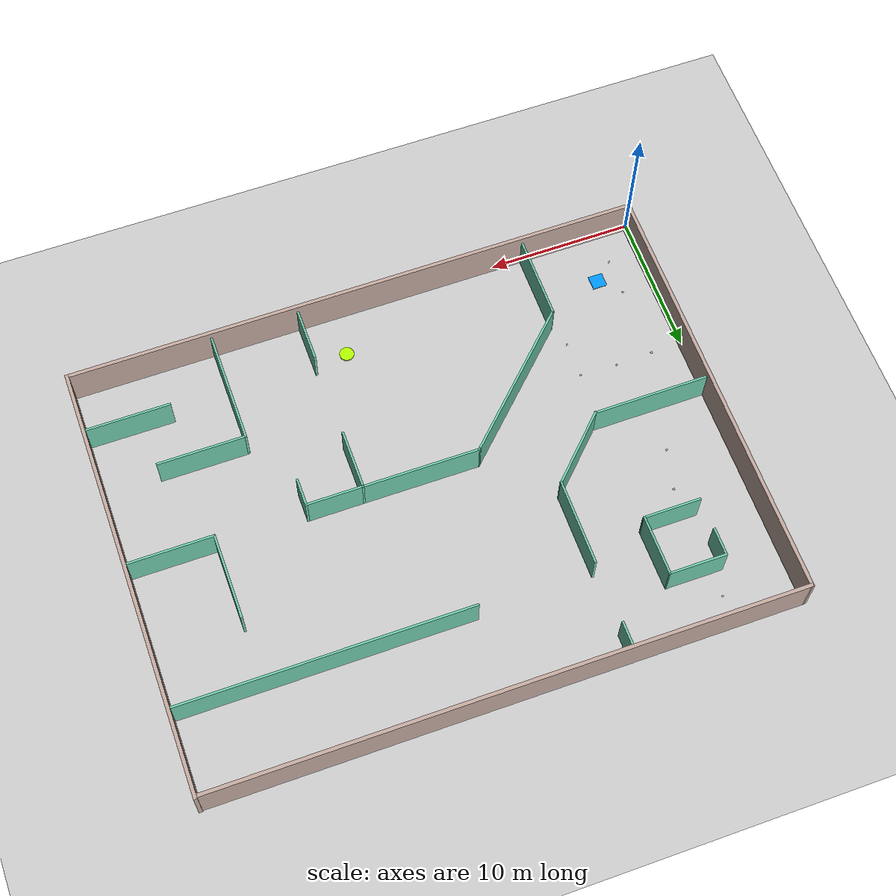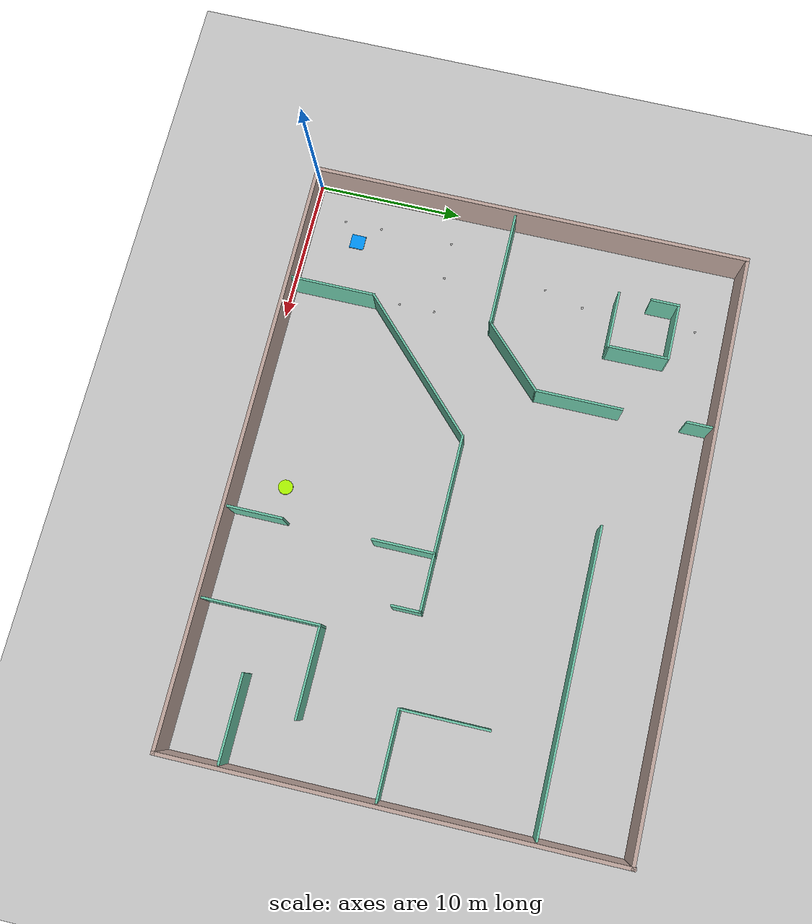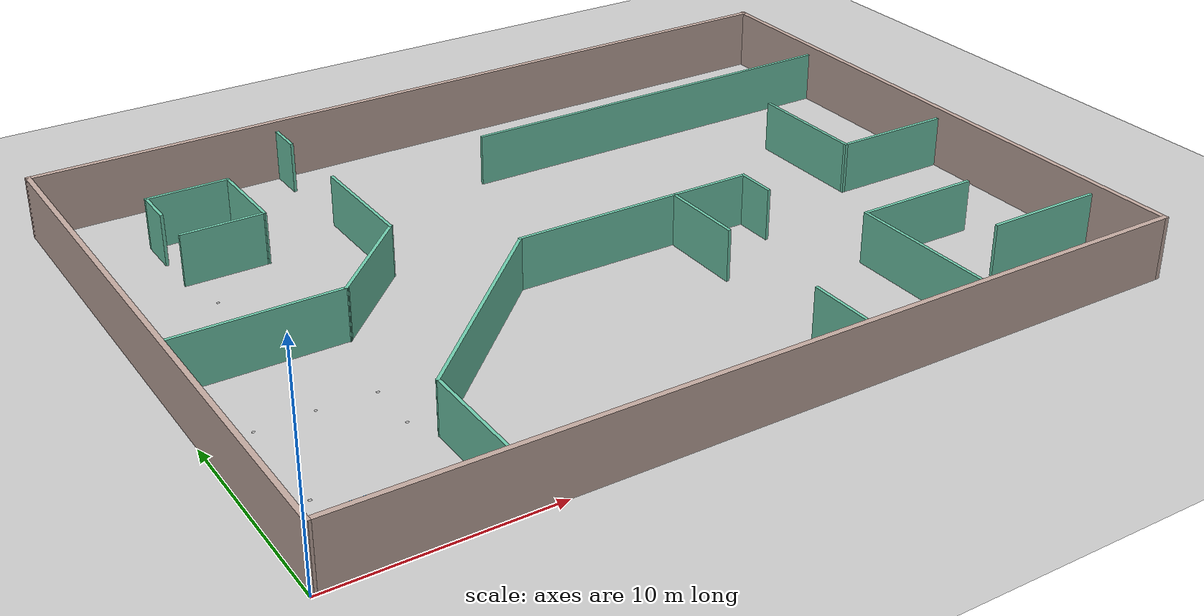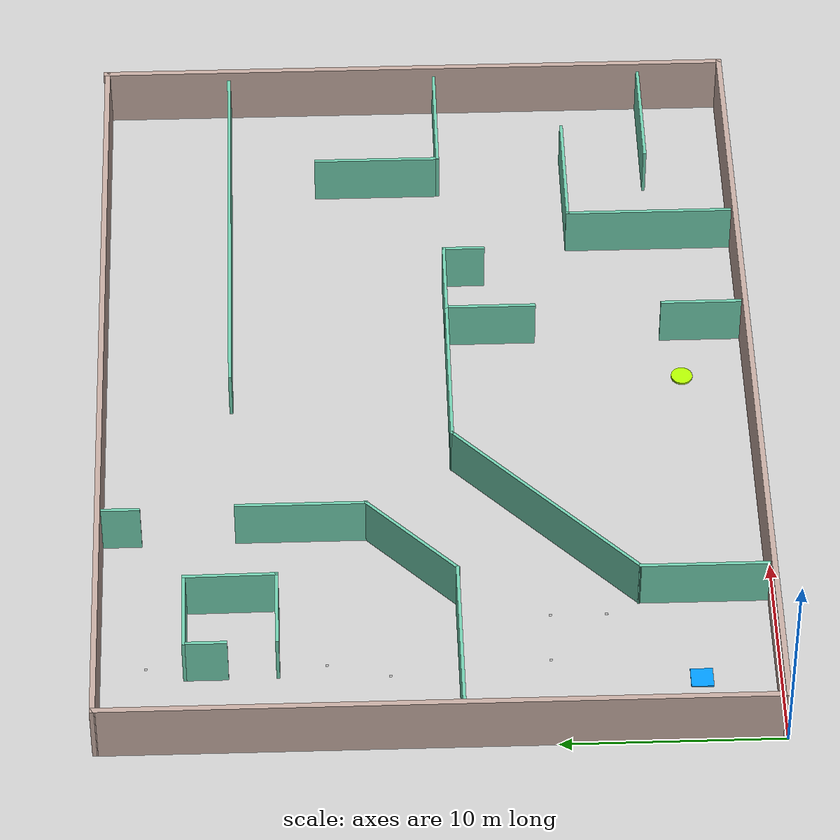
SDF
<sdf version="1.6">
 <world name="default">
  <plugin name="voxblox_ground_truth_plugin" filename="libvoxblox_ground_truth_plugin.so"/>
  <light name="sun" type="directional">
   <cast_shadows>0</cast_shadows>
   <pose>0 0 10 0 -0 0</pose>
   <diffuse>0.8 0.8 0.8 1</diffuse>
   <specular>0.2 0.2 0.2 1</specular>
   <attenuation>
    <range>1000</range>
    <constant>0.9</constant>
    <linear>0.01</linear>
    <quadratic>0.001</quadratic>
   </attenuation>
   <direction>-0.5 0.1 -0.9</direction>
  </light>
  <plugin name="ros_interface_plugin" filename="librotors_gazebo_ros_interface_plugin.so"/>
  <model name="ground_plane">
   <static>1</static>
   <link name="link">
    <collision name="collision">
     <geometry><plane><normal>0 0 1</normal><size>100 100</size></plane></geometry>
     <surface>
      <contact><collide_bitmask>65535</collide_bitmask></contact>
      <friction><ode><mu>100</mu><mu2>50</mu2></ode></friction>
     </surface>
    </collision>
    <visual name="visual">
     <cast_shadows>0</cast_shadows>
     <geometry><plane><normal>0 0 1</normal><size>100 100</size></plane></geometry>
     <material>
      <script><uri>file://media/materials/scripts/gazebo.material</uri><name>Gazebo/Grey</name></script>
     </material>
    </visual>
   </link>
  </model>
  <gravity>0 0 -9.8</gravity>
  <magnetic_field>6e-06 2.3e-05 -4.2e-05</magnetic_field>
  <atmosphere type="adiabatic"/>
  <physics name="default_physics" default="0" type="ode">
   <max_step_size>0.001</max_step_size>
   <real_time_factor>1</real_time_factor>
   <real_time_update_rate>1000</real_time_update_rate>
  </physics>
  <scene><ambient>0.4 0.4 0.4 1</ambient><background>0.7 0.7 0.7 1</background><shadows>1</shadows></scene>
  <spherical_coordinates>
   <surface_model>EARTH_WGS84</surface_model>
   <latitude_deg>0</latitude_deg>
   <longitude_deg>0</longitude_deg>
   <elevation>0</elevation>
   <heading_deg>0</heading_deg>
  </spherical_coordinates>
  <model name="world_final.world">
   <pose>20.1571 15.1446 0 0 -0 0</pose>
   <link name="Wall_10">
    <collision name="Wall_10_Collision">
     <geometry><box><size>30.25 0.25 3</size></box></geometry>
     <pose>0 0 1.5 0 -0 0</pose>
    </collision>
    <visual name="Wall_10_Visual">
     <pose>0 0 1.5 0 -0 0</pose>
     <geometry><box><size>30.25 0.25 3</size></box></geometry>
     <material>
      <script><uri>file://media/materials/scripts/gazebo.material</uri><name>Gazebo/Grey</name></script>
      <ambient>0.760784 0.662745 0.627451 1</ambient>
     </material>
     <meta><layer>0</layer></meta>
    </visual>
    <pose>-20.0312 -0.019177 0 0 -0 1.5708</pose>
   </link>
   <link name="Wall_16">
    <collision name="Wall_16_Collision">
     <geometry><box><size>11.7015 0.15 2.5</size></box></geometry>
     <pose>0 0 1.25 0 -0 0</pose>
    </collision>
    <visual name="Wall_16_Visual">
     <pose>0 0 1.25 0 -0 0</pose>
     <geometry><box><size>11.7015 0.15 2.5</size></box></geometry>
     <material>
      <script><uri>file://media/materials/scripts/gazebo.material</uri><name>Gazebo/Grey</name></script>
      <ambient>0.435294 0.796078 0.67451 1</ambient>
     </material>
     <meta><layer>0</layer></meta>
    </visual>
    <pose>-7.99118 -5.0937 0 0 -0 0.773461</pose>
   </link>
   <link name="Wall_17">
    <collision name="Wall_17_Collision">
     <geometry><box><size>8.12245 0.15 2.5</size></box></geometry>
     <pose>0 0 1.25 0 -0 0</pose>
    </collision>
    <visual name="Wall_17_Visual">
     <pose>0 0 1.25 0 -0 0</pose>
     <geometry><box><size>8.12245 0.15 2.5</size></box></geometry>
     <material>
      <script><uri>file://media/materials/scripts/gazebo.material</uri><name>Gazebo/Grey</name></script>
      <ambient>0.435294 0.796078 0.67451 1</ambient>
     </material>
     <meta><layer>0</layer></meta>
    </visual>
    <pose>0.127824 -1.0677 0 0 0 -0.002258</pose>
   </link>
   <link name="Wall_19">
    <collision name="Wall_19_Collision">
     <geometry><box><size>6 0.15 2.5</size></box></geometry>
     <pose>0 0 1.25 0 -0 0</pose>
    </collision>
    <visual name="Wall_19_Visual">
     <pose>0 0 1.25 0 -0 0</pose>
     <geometry><box><size>6 0.15 2.5</size></box></geometry>
     <material>
      <script><uri>file://media/materials/scripts/gazebo.material</uri><name>Gazebo/Grey</name></script>
      <ambient>0.435294 0.796078 0.67451 1</ambient>
     </material>
     <meta><layer>0</layer></meta>
    </visual>
    <pose>-12.1237 -12.0537 0 0 0 -1.5708</pose>
   </link>
   <link name="Wall_21">
    <collision name="Wall_21_Collision">
     <geometry><box><size>8.11035 0.15 2.5</size></box></geometry>
     <pose>0 0 1.25 0 -0 0</pose>
    </collision>
    <visual name="Wall_21_Visual">
     <pose>0 0 1.25 0 -0 0</pose>
     <geometry><box><size>8.11035 0.15 2.5</size></box></geometry>
     <material>
      <script><uri>file://media/materials/scripts/gazebo.material</uri><name>Gazebo/Grey</name></script>
      <ambient>0.435294 0.796078 0.67451 1</ambient>
     </material>
     <meta><layer>0</layer></meta>
    </visual>
    <pose>-15.9387 -1.02571 0 0 -0 0.003015</pose>
   </link>
   <link name="Wall_24">
    <collision name="Wall_24_Collision">
     <geometry><box><size>5.75 0.15 2.5</size></box></geometry>
     <pose>0 0 1.25 0 -0 0</pose>
    </collision>
    <visual name="Wall_24_Visual">
     <pose>0 0 1.25 0 -0 0</pose>
     <geometry><box><size>5.75 0.15 2.5</size></box></geometry>
     <material>
      <script><uri>file://media/materials/scripts/gazebo.material</uri><name>Gazebo/Grey</name></script>
      <ambient>0.435294 0.796078 0.67451 1</ambient>
     </material>
     <meta><layer>0</layer></meta>
    </visual>
    <pose>-9.97868 0.966295 0 0 -0 0.785398</pose>
   </link>
   <link name="Wall_26">
    <collision name="Wall_26_Collision">
     <geometry><box><size>6 0.15 2.5</size></box></geometry>
     <pose>0 0 1.25 0 -0 0</pose>
    </collision>
    <visual name="Wall_26_Visual">
     <pose>0 0 1.25 0 -0 0</pose>
     <geometry><box><size>6 0.15 2.5</size></box></geometry>
     <material>
      <script><uri>file://media/materials/scripts/gazebo.material</uri><name>Gazebo/Grey</name></script>
      <ambient>0.435294 0.796078 0.67451 1</ambient>
     </material>
     <meta><layer>0</layer></meta>
    </visual>
    <pose>-7.99868 5.87129 0 0 -0 1.5708</pose>
   </link>
   <link name="Wall_29">
    <collision name="Wall_29_Collision">
     <geometry><box><size>4.23222 0.15 2.5</size></box></geometry>
     <pose>0 0 1.25 0 -0 0</pose>
    </collision>
    <visual name="Wall_29_Visual">
     <pose>0 0 1.25 0 -0 0</pose>
     <geometry><box><size>4.23222 0.15 2.5</size></box></geometry>
     <material>
      <script><uri>file://media/materials/scripts/gazebo.material</uri><name>Gazebo/Grey</name></script>
      <ambient>0.435294 0.796078 0.67451 1</ambient>
     </material>
     <meta><layer>0</layer></meta>
    </visual>
    <pose>4.11432 -3.1177 0 0 0 -1.5708</pose>
   </link>
   <link name="Wall_31">
    <collision name="Wall_31_Collision">
     <geometry><box><size>4 0.15 2.5</size></box></geometry>
     <pose>0 0 1.25 0 -0 0</pose>
    </collision>
    <visual name="Wall_31_Visual">
     <pose>0 0 1.25 0 -0 0</pose>
     <geometry><box><size>4 0.15 2.5</size></box></geometry>
     <material>
      <script><uri>file://media/materials/scripts/gazebo.material</uri><name>Gazebo/Grey</name></script>
      <ambient>0.435294 0.796078 0.67451 1</ambient>
     </material>
     <meta><layer>0</layer></meta>
    </visual>
    <pose>6.03932 -1.07671 0 0 -0 0</pose>
   </link>
   <link name="Wall_33">
    <collision name="Wall_33_Collision">
     <geometry><box><size>6 0.15 2.5</size></box></geometry>
     <pose>0 0 1.25 0 -0 0</pose>
    </collision>
    <visual name="Wall_33_Visual">
     <pose>0 0 1.25 0 -0 0</pose>
     <geometry><box><size>6 0.15 2.5</size></box></geometry>
     <material>
      <script><uri>file://media/materials/scripts/gazebo.material</uri><name>Gazebo/Grey</name></script>
      <ambient>0.435294 0.796078 0.67451 1</ambient>
     </material>
     <meta><layer>0</layer></meta>
    </visual>
    <pose>17.0263 -0.983705 0 0 -0 3.14159</pose>
   </link>
   <link name="Wall_34">
    <collision name="Wall_34_Collision">
     <geometry><box><size>6 0.15 2.5</size></box></geometry>
     <pose>0 0 1.25 0 -0 0</pose>
    </collision>
    <visual name="Wall_34_Visual">
     <pose>0 0 1.25 0 -0 0</pose>
     <geometry><box><size>6 0.15 2.5</size></box></geometry>
     <material>
      <script><uri>file://media/materials/scripts/gazebo.material</uri><name>Gazebo/Grey</name></script>
      <ambient>0.435294 0.796078 0.67451 1</ambient>
     </material>
     <meta><layer>0</layer></meta>
    </visual>
    <pose>14.1013 1.94129 0 0 -0 1.5708</pose>
   </link>
   <link name="Wall_36">
    <collision name="Wall_36_Collision">
     <geometry><box><size>4 0.15 2.5</size></box></geometry>
     <pose>0 0 1.25 0 -0 0</pose>
    </collision>
    <visual name="Wall_36_Visual">
     <pose>0 0 1.25 0 -0 0</pose>
     <geometry><box><size>4 0.15 2.5</size></box></geometry>
     <material>
      <script><uri>file://media/materials/scripts/gazebo.material</uri><name>Gazebo/Grey</name></script>
      <ambient>0.435294 0.796078 0.67451 1</ambient>
     </material>
     <meta><layer>0</layer></meta>
    </visual>
    <pose>4.09632 -13.0997 0 0 0 -1.5708</pose>
   </link>
   <link name="Wall_38">
    <collision name="Wall_38_Collision">
     <geometry><box><size>6 0.15 2.5</size></box></geometry>
     <pose>0 0 1.25 0 -0 0</pose>
    </collision>
    <visual name="Wall_38_Visual">
     <pose>0 0 1.25 0 -0 0</pose>
     <geometry><box><size>6 0.15 2.5</size></box></geometry>
     <material>
      <script><uri>file://media/materials/scripts/gazebo.material</uri><name>Gazebo/Grey</name></script>
      <ambient>0.435294 0.796078 0.67451 1</ambient>
     </material>
     <meta><layer>0</layer></meta>
    </visual>
    <pose>17.1173 -10.9947 0 0 -0 3.14159</pose>
   </link>
   <link name="Wall_40">
    <collision name="Wall_40_Collision">
     <geometry><box><size>6.12079 0.15 2.5</size></box></geometry>
     <pose>0 0 1.25 0 -0 0</pose>
    </collision>
    <visual name="Wall_40_Visual">
     <pose>0 0 1.25 0 -0 0</pose>
     <geometry><box><size>6.12079 0.15 2.5</size></box></geometry>
     <material>
      <script><uri>file://media/materials/scripts/gazebo.material</uri><name>Gazebo/Grey</name></script>
      <ambient>0.435294 0.796078 0.67451 1</ambient>
     </material>
     <meta><layer>0</layer></meta>
    </visual>
    <pose>13.1578 -7.05671 0 0 -0 3.14159</pose>
   </link>
   <link name="Wall_41">
    <collision name="Wall_41_Collision">
     <geometry><box><size>8 0.15 2.5</size></box></geometry>
     <pose>0 0 1.25 0 -0 0</pose>
    </collision>
    <visual name="Wall_41_Visual">
     <pose>0 0 1.25 0 -0 0</pose>
     <geometry><box><size>8 0.15 2.5</size></box></geometry>
     <material>
      <script><uri>file://media/materials/scripts/gazebo.material</uri><name>Gazebo/Grey</name></script>
      <ambient>0.435294 0.796078 0.67451 1</ambient>
     </material>
     <meta><layer>0</layer></meta>
    </visual>
    <pose>10.1723 -10.9817 0 0 0 -1.5708</pose>
   </link>
   <link name="Wall_43">
    <collision name="Wall_43_Collision">
     <geometry><box><size>20.25 0.15 2.5</size></box></geometry>
     <pose>0 0 1.25 0 -0 0</pose>
    </collision>
    <visual name="Wall_43_Visual">
     <pose>0 0 1.25 0 -0 0</pose>
     <geometry><box><size>20.25 0.15 2.5</size></box></geometry>
     <material>
      <script><uri>file://media/materials/scripts/gazebo.material</uri><name>Gazebo/Grey</name></script>
      <ambient>0.435294 0.796078 0.67451 1</ambient>
     </material>
     <meta><layer>0</layer></meta>
    </visual>
    <pose>10.0313 9.0413 0 0 -0 3.14159</pose>
   </link>
   <link name="Wall_45">
    <collision name="Wall_45_Collision">
     <geometry><box><size>4 0.15 2.5</size></box></geometry>
     <pose>0 0 1.25 0 -0 0</pose>
    </collision>
    <visual name="Wall_45_Visual">
     <pose>0 0 1.25 0 -0 0</pose>
     <geometry><box><size>4 0.15 2.5</size></box></geometry>
     <material>
      <script><uri>file://media/materials/scripts/gazebo.material</uri><name>Gazebo/Grey</name></script>
      <ambient>0.435294 0.796078 0.67451 1</ambient>
     </material>
     <meta><layer>0</layer></meta>
    </visual>
    <pose>-14.0597 11.1143 0 0 -0 0</pose>
   </link>
   <link name="Wall_46">
    <collision name="Wall_46_Collision">
     <geometry><box><size>4.25 0.15 2.5</size></box></geometry>
     <pose>0 0 1.25 0 -0 0</pose>
    </collision>
    <visual name="Wall_46_Visual">
     <pose>0 0 1.25 0 -0 0</pose>
     <geometry><box><size>4.25 0.15 2.5</size></box></geometry>
     <material>
      <script><uri>file://media/materials/scripts/gazebo.material</uri><name>Gazebo/Grey</name></script>
      <ambient>0.435294 0.796078 0.67451 1</ambient>
     </material>
     <meta><layer>0</layer></meta>
    </visual>
    <pose>-12.1147 9.06429 0 0 0 -1.56104</pose>
   </link>
   <link name="Wall_47">
    <collision name="Wall_47_Collision">
     <geometry><box><size>4 0.15 2.5</size></box></geometry>
     <pose>0 0 1.25 0 -0 0</pose>
    </collision>
    <visual name="Wall_47_Visual">
     <pose>0 0 1.25 0 -0 0</pose>
     <geometry><box><size>4 0.15 2.5</size></box></geometry>
     <material>
      <script><uri>file://media/materials/scripts/gazebo.material</uri><name>Gazebo/Grey</name></script>
      <ambient>0.435294 0.796078 0.67451 1</ambient>
     </material>
     <meta><layer>0</layer></meta>
    </visual>
    <pose>-14.0197 7.01429 0 0 -0 3.14159</pose>
   </link>
   <link name="Wall_49">
    <collision name="Wall_49_Collision">
     <geometry><box><size>2 0.15 2.5</size></box></geometry>
     <pose>0 0 1.25 0 -0 0</pose>
    </collision>
    <visual name="Wall_49_Visual">
     <pose>0 0 1.25 0 -0 0</pose>
     <geometry><box><size>2 0.15 2.5</size></box></geometry>
     <material>
      <script><uri>file://media/materials/scripts/gazebo.material</uri><name>Gazebo/Grey</name></script>
      <ambient>0.435294 0.796078 0.67451 1</ambient>
     </material>
     <meta><layer>0</layer></meta>
    </visual>
    <pose>-8.10268 14.0863 0 0 0 -1.5708</pose>
   </link>
   <link name="Wall_51">
    <collision name="Wall_51_Collision">
     <geometry><box><size>2 0.15 2.5</size></box></geometry>
     <pose>0 0 1.25 0 -0 0</pose>
    </collision>
    <visual name="Wall_51_Visual">
     <pose>0 0 1.25 0 -0 0</pose>
     <geometry><box><size>2 0.15 2.5</size></box></geometry>
     <material>
      <script><uri>file://media/materials/scripts/gazebo.material</uri><name>Gazebo/Grey</name></script>
      <ambient>0.435294 0.796078 0.67451 1</ambient>
     </material>
     <meta><layer>0</layer></meta>
    </visual>
    <pose>-15.9847 10.1893 0 0 0 -1.5708</pose>
   </link>
   <link name="Wall_53">
    <collision name="Wall_53_Collision">
     <geometry><box><size>2 0.15 2.5</size></box></geometry>
     <pose>0 0 1.25 0 -0 0</pose>
    </collision>
    <visual name="Wall_53_Visual">
     <pose>0 0 1.25 0 -0 0</pose>
     <geometry><box><size>2 0.15 2.5</size></box></geometry>
     <material>
      <script><uri>file://media/materials/scripts/gazebo.material</uri><name>Gazebo/Grey</name></script>
      <ambient>0.435294 0.796078 0.67451 1</ambient>
     </material>
     <meta><layer>0</layer></meta>
    </visual>
    <pose>7.96432 -2.0017 0 0 0 -1.5708</pose>
   </link>
   <link name="Wall_6">
    <collision name="Wall_6_Collision">
     <geometry><box><size>40.25 0.25 3</size></box></geometry>
     <pose>0 0 1.5 0 -0 0</pose>
    </collision>
    <visual name="Wall_6_Visual">
     <pose>0 0 1.5 0 -0 0</pose>
     <geometry><box><size>40.25 0.25 3</size></box></geometry>
     <material>
      <script><uri>file://media/materials/scripts/gazebo.material</uri><name>Gazebo/Grey</name></script>
      <ambient>0.760784 0.662745 0.627451 1</ambient>
     </material>
     <meta><layer>0</layer></meta>
    </visual>
    <pose>-0.031209 14.966 0 0 0 -0.000742</pose>
   </link>
   <link name="Wall_8">
    <collision name="Wall_8_Collision">
     <geometry><box><size>30.25 0.25 3</size></box></geometry>
     <pose>0 0 1.5 0 -0 0</pose>
    </collision>
    <visual name="Wall_8_Visual">
     <pose>0 0 1.5 0 -0 0</pose>
     <geometry><box><size>30.25 0.25 3</size></box></geometry>
     <material>
      <script><uri>file://media/materials/scripts/gazebo.material</uri><name>Gazebo/Grey</name></script>
      <ambient>0.760784 0.662745 0.627451 1</ambient>
     </material>
     <meta><layer>0</layer></meta>
    </visual>
    <pose>20.0303 0.019295 0 0 0 -1.5708</pose>
   </link>
   <link name="Wall_9">
    <collision name="Wall_9_Collision">
     <geometry><box><size>40.3115 0.25 3</size></box></geometry>
     <pose>0 0 1.5 0 -0 0</pose>
    </collision>
    <visual name="Wall_9_Visual">
     <pose>0 0 1.5 0 -0 0</pose>
     <geometry><box><size>40.3115 0.25 3</size></box></geometry>
     <material>
      <script><uri>file://media/materials/scripts/gazebo.material</uri><name>Gazebo/Grey</name></script>
      <ambient>0.760784 0.662745 0.627451 1</ambient>
     </material>
     <meta><layer>0</layer></meta>
    </visual>
    <pose>-0.00044 -14.9999 0 0 0 -3.14063</pose>
   </link>
   <static>1</static>
  </model>
  <model name="charge">
   <link name="link">
    <inertial>
     <mass>1</mass>
     <inertia>
      <ixx>0.166667</ixx>
      <ixy>0</ixy>
      <ixz>0</ixz>
      <iyy>0.166667</iyy>
      <iyz>0</iyz>
      <izz>0.166667</izz>
     </inertia>
    </inertial>
    <visual name="visual">
     <geometry><box><size>1 1 0.069113</size></box></geometry>
     <material>
      <script><name>Gazebo/Grey</name><uri>file://media/materials/scripts/gazebo.material</uri></script>
      <shader type="pixel"><normal_map>__default__</normal_map></shader>
      <ambient>0 0.6 1 1</ambient>
      <diffuse>0.7 0.7 0.7 1</diffuse>
      <specular>0.01 0.01 0.01 1</specular>
      <emissive>0 0 0 1</emissive>
     </material>
     <cast_shadows>0</cast_shadows>
    </visual>
   </link>
   <static>1</static>
   <pose>3.54642 3.52038 0.034557 0 -0 0</pose>
  </model>
  <model name="check">
   <link name="link">
    <inertial>
     <mass>1</mass>
     <inertia><ixx>0.145833</ixx><ixy>0</ixy><ixz>0</ixz><iyy>0.145833</iyy><iyz>0</iyz><izz>0.125</izz></inertia>
    </inertial>
    <visual name="visual">
     <geometry><cylinder><radius>0.5</radius><length>0.104489</length></cylinder></geometry>
     <material>
      <script><name>Gazebo/Grey</name><uri>file://media/materials/scripts/gazebo.material</uri></script>
      <shader type="pixel"><normal_map>__default__</normal_map></shader>
      <ambient>0.7 1 0 1</ambient>
      <diffuse>0.7 0.7 0.7 1</diffuse>
      <specular>0.01 0.01 0.01 1</specular>
      <emissive>0 0 0 1</emissive>
     </material>
     <cast_shadows>0</cast_shadows>
    </visual>
   </link>
   <static>1</static>
   <pose>21.8276 3.13698 0 0 -0 0</pose>
  </model>
  <include><uri>model://marker_0</uri><pose>2.2 2.3 0.001 0.0 0.0 0.0</pose></include>
  <include><uri>model://marker_1</uri><pose>2.2 4.9 0.001 0.0 0.0 0.0</pose></include>
  <include><uri>model://marker_3</uri><pose>2.2 10.0 0.001 0.0 0.0 0.0</pose></include>
  <include><uri>model://marker_10</uri><pose>4.8 10.1 0.001 0.0 0.0 0.0</pose></include>
  <include><uri>model://marker_11</uri><pose>4.1 17.2 0.001 0.0 0.0 0.0</pose></include>
  <include><uri>model://marker_12</uri><pose>4.8 20.0 0.001 0.0 0.0 0.0</pose></include>
  <include><uri>model://marker_13</uri><pose>4.8 28.0 0.001 0.0 0.0 0.0</pose></include>
  <include><uri>model://marker_14</uri><pose>7.4 7.5 0.001 0.0 0.0 0.0</pose></include>
  <include><uri>model://marker_15</uri><pose>7.4 10.0 0.001 0.0 0.0 0.0</pose></include>
 </world>
</sdf>

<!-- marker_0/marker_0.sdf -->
<sdf version="1.4">
  <model name="marker_0">
    <static>1</static>
    <link name="link_marker_0">
      <gravity>false</gravity>
      <visual name="visual_marker_0">
        <geometry>
          <box>
            <size>0.13 0.13 0.001</size>
            <!-- SIZE OF THE MARKER + MARGIN -->
          </box>
        </geometry>
        <material>
          <script>
	    <uri>model://marker_0/material/scripts</uri>
	    <uri>model://marker_0/material/textures</uri>
            <name>marker_0</name>
          </script>
        </material>
      </visual>
      <collision name="collision">
        <geometry>
          <box>
            <size>0.13 0.13 0.02</size>
            <!-- SIZE OF THE MARKER + MARGIN -->
          </box>
        </geometry>
      </collision>
    </link>
  </model>
</sdf>

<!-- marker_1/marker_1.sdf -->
<sdf version="1.4">
  <model name="marker_1">
    <static>1</static>
    <link name="link_marker_1">
      <gravity>false</gravity>
      <visual name="visual_marker_1">
        <geometry>
          <box>
            <size>0.13 0.13 0.001</size>
            <!-- SIZE OF THE MARKER + MARGIN -->
          </box>
        </geometry>
        <material>
          <script>
	    <uri>model://marker_1/material/scripts</uri>
	    <uri>model://marker_1/material/textures</uri>
            <name>marker_1</name>
          </script>
        </material>
      </visual>
      <collision name="collision">
        <geometry>
          <box>
            <size>0.13 0.13 0.02</size>
            <!-- SIZE OF THE MARKER + MARGIN -->
          </box>
        </geometry>
      </collision>
    </link>
  </model>
</sdf>

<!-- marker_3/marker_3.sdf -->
<sdf version="1.4">
  <model name="marker_3">
    <static>1</static>
    <link name="link_marker_3">
      <gravity>false</gravity>
      <visual name="visual_marker_3">
        <geometry>
          <box>
            <size>0.13 0.13 0.001</size>
            <!-- SIZE OF THE MARKER + MARGIN -->
          </box>
        </geometry>
        <material>
          <script>
	    <uri>model://marker_3/material/scripts</uri>
	    <uri>model://marker_3/material/textures</uri>
            <name>marker_3</name>
          </script>
        </material>
      </visual>
      <collision name="collision">
        <geometry>
          <box>
            <size>0.13 0.13 0.02</size>
            <!-- SIZE OF THE MARKER + MARGIN -->
          </box>
        </geometry>
      </collision>
    </link>
  </model>
</sdf>

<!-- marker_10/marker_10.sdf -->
<sdf version="1.4">
  <model name="marker_10">
    <static>1</static>
    <link name="link_marker_10">
      <gravity>false</gravity>
      <visual name="visual_marker_10">
        <geometry>
          <box>
            <size>0.13 0.13 0.001</size>
            <!-- SIZE OF THE MARKER + MARGIN -->
          </box>
        </geometry>
        <material>
          <script>
	    <uri>model://marker_10/material/scripts</uri>
	    <uri>model://marker_10/material/textures</uri>
            <name>marker_10</name>
          </script>
        </material>
      </visual>
      <collision name="collision">
        <geometry>
          <box>
            <size>0.13 0.13 0.02</size>
            <!-- SIZE OF THE MARKER + MARGIN -->
          </box>
        </geometry>
      </collision>
    </link>
  </model>
</sdf>

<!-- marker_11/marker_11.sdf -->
<sdf version="1.4">
  <model name="marker_11">
    <static>1</static>
    <link name="link_marker_11">
      <gravity>false</gravity>
      <visual name="visual_marker_11">
        <geometry>
          <box>
            <size>0.13 0.13 0.001</size>
            <!-- SIZE OF THE MARKER + MARGIN -->
          </box>
        </geometry>
        <material>
          <script>
	    <uri>model://marker_11/material/scripts</uri>
	    <uri>model://marker_11/material/textures</uri>
            <name>marker_11</name>
          </script>
        </material>
      </visual>
      <collision name="collision">
        <geometry>
          <box>
            <size>0.13 0.13 0.02</size>
            <!-- SIZE OF THE MARKER + MARGIN -->
          </box>
        </geometry>
      </collision>
    </link>
  </model>
</sdf>

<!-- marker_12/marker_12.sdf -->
<sdf version="1.4">
  <model name="marker_12">
    <static>1</static>
    <link name="link_marker_12">
      <gravity>false</gravity>
      <visual name="visual_marker_12">
        <geometry>
          <box>
            <size>0.13 0.13 0.001</size>
            <!-- SIZE OF THE MARKER + MARGIN -->
          </box>
        </geometry>
        <material>
          <script>
	    <uri>model://marker_12/material/scripts</uri>
	    <uri>model://marker_12/material/textures</uri>
            <name>marker_12</name>
          </script>
        </material>
      </visual>
      <collision name="collision">
        <geometry>
          <box>
            <size>0.13 0.13 0.02</size>
            <!-- SIZE OF THE MARKER + MARGIN -->
          </box>
        </geometry>
      </collision>
    </link>
  </model>
</sdf>

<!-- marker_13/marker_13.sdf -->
<sdf version="1.4">
  <model name="marker_13">
    <static>1</static>
    <link name="link_marker_13">
      <gravity>false</gravity>
      <visual name="visual_marker_13">
        <geometry>
          <box>
            <size>0.13 0.13 0.001</size>
            <!-- SIZE OF THE MARKER + MARGIN -->
          </box>
        </geometry>
        <material>
          <script>
	    <uri>model://marker_13/material/scripts</uri>
	    <uri>model://marker_13/material/textures</uri>
            <name>marker_13</name>
          </script>
        </material>
      </visual>
      <collision name="collision">
        <geometry>
          <box>
            <size>0.13 0.13 0.02</size>
            <!-- SIZE OF THE MARKER + MARGIN -->
          </box>
        </geometry>
      </collision>
    </link>
  </model>
</sdf>

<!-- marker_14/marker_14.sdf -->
<sdf version="1.4">
  <model name="marker_14">
    <static>1</static>
    <link name="link_marker_14">
      <gravity>false</gravity>
      <visual name="visual_marker_14">
        <geometry>
          <box>
            <size>0.13 0.13 0.001</size>
            <!-- SIZE OF THE MARKER + MARGIN -->
          </box>
        </geometry>
        <material>
          <script>
	    <uri>model://marker_14/material/scripts</uri>
	    <uri>model://marker_14/material/textures</uri>
            <name>marker_14</name>
          </script>
        </material>
      </visual>
      <collision name="collision">
        <geometry>
          <box>
            <size>0.13 0.13 0.02</size>
            <!-- SIZE OF THE MARKER + MARGIN -->
          </box>
        </geometry>
      </collision>
    </link>
  </model>
</sdf>

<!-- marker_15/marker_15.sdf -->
<sdf version="1.4">
  <model name="marker_15">
    <static>1</static>
    <link name="link_marker_15">
      <gravity>false</gravity>
      <visual name="visual_marker_15">
        <geometry>
          <box>
            <size>0.13 0.13 0.001</size>
            <!-- SIZE OF THE MARKER + MARGIN -->
          </box>
        </geometry>
        <material>
          <script>
	    <uri>model://marker_15/material/scripts</uri>
	    <uri>model://marker_15/material/textures</uri>
            <name>marker_15</name>
          </script>
        </material>
      </visual>
      <collision name="collision">
        <geometry>
          <box>
            <size>0.13 0.13 0.02</size>
            <!-- SIZE OF THE MARKER + MARGIN -->
          </box>
        </geometry>
      </collision>
    </link>
  </model>
</sdf>
